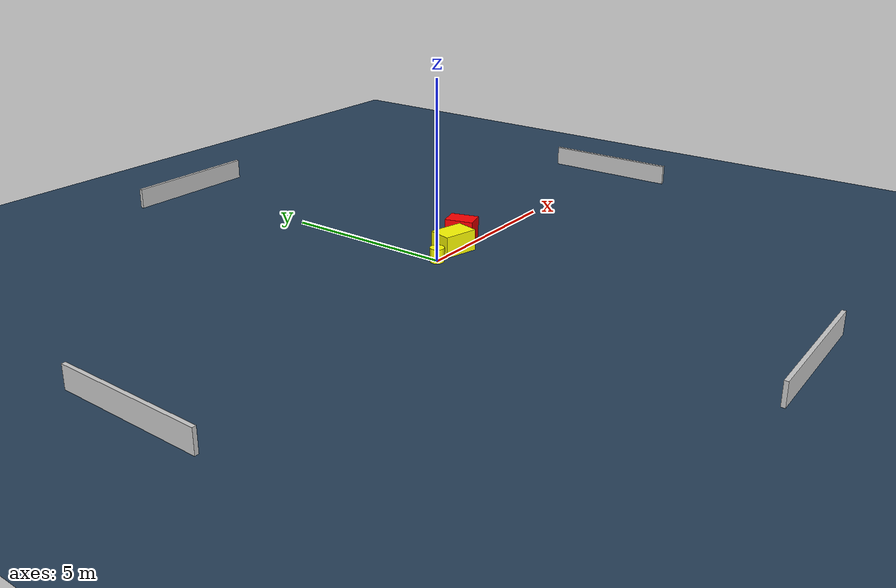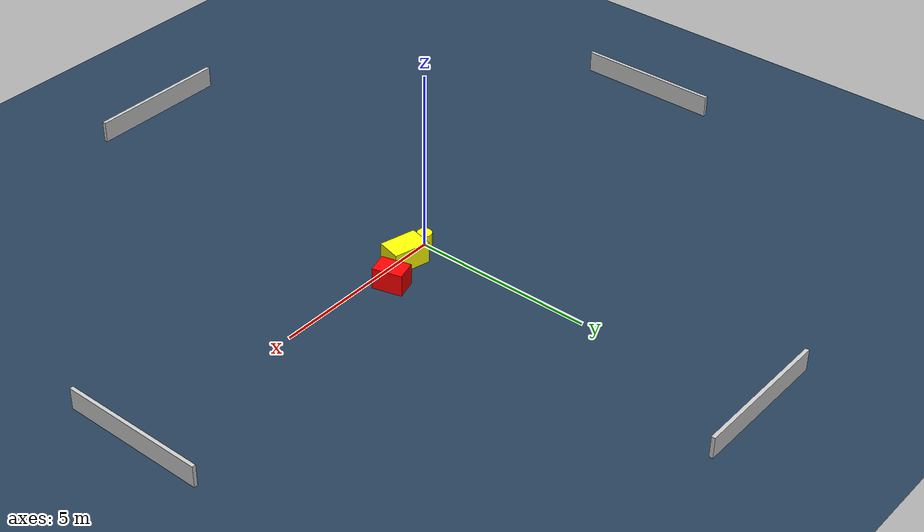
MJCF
<?xml version="1.0" ?>
<mujoco model="generated_environment">
  <option timestep="0.01" integrator="RK4" cone="elliptic"/>
  <default>
    <geom density="1"/>
  </default>
  <asset>
    <texture builtin="gradient" height="3072" name="skybox" rgb1="0.3 0.5 0.7" rgb2="0 0 0" type="skybox" width="512"/>
    <texture builtin="checker" height="300" name="groundplane" rgb1="0.2 0.3 0.4" rgb2="0.1 0.2 0.3" type="2d" width="300"/>
    <material name="groundplane" reflectance="0.2" texrepeat="5 5" texture="groundplane"/>
  </asset>
  <worldbody>
    <light dir="0 0 -1" directional="true" pos="0 0 1.5"/>
    <geom condim="3" friction="0.5 0.005 0.001" material="groundplane" name="floor" pos="0 0 0" size="0 0 0.05" type="plane"/>
    <body name="walls">
      <geom name="wall_1" condim="4" pos="-10.0 0.0 0.3" rgba="0.800000011920929 0.800000011920929 0.800000011920929 1.0" size="0.05 2.0 0.3" type="box"/>
      <geom name="wall_2" condim="4" pos="10.0 0.0 0.3" rgba="0.800000011920929 0.800000011920929 0.800000011920929 1.0" size="0.05 2.0 0.3" type="box"/>
      <geom name="wall_3" condim="4" pos="0.0 -10.0 0.3" rgba="0.800000011920929 0.800000011920929 0.800000011920929 1.0" size="2.0 0.05 0.3" type="box"/>
      <geom name="wall_4" condim="4" pos="0.0 10.0 0.3" rgba="0.800000011920929 0.800000011920929 0.800000011920929 1.0" size="2.0 0.05 0.3" type="box"/>
    </body>
    <body name="robot">
      <joint name="joint_x" type="slide" pos="0 0 0" axis="1 0 0"/>
      <joint name="joint_y" type="slide" pos="0 0 0" axis="0 1 0"/>
      <geom name="robot" type="cylinder" pos="0.0 0.0 0.2" size="0.2 0.2 0.0" mass="5.0" friction="1.0 0.005 0.0001" condim="4" rgba="1.0 1.0 0.0 1.0"/>
    </body>
    <body name="obstacle_1_movable">
      <geom name="obstacle_1_movable" condim="4" pos="0.8882544824385382 0.10133328483432705 0.3" euler="0 0 345.9620053758936" friction="0.0 0.005 0.001" rgba="1.0 1.0 0.0 1.0" size="0.5102465734049937 0.33553429101105137 0.3" type="box" mass="0.1"/>
      <joint type="free"/>
    </body>
    <body name="obstacle_2_static">
      <geom name="obstacle_2_static" condim="4" pos="1.8494941509268905 0.4973522650068314 0.3" euler="0 0 195.60151206492634" friction="0.0 0.005 0.001" rgba="1.0 0.0 0.0 1.0" size="0.28596924630864107 0.4067087961893799 0.3" type="box"/>
    </body>
  </worldbody>
  <actuator>
    <motor name="actuator_x" joint="joint_x" gear="1" ctrlrange="-1 1"/>
    <motor name="actuator_y" joint="joint_y" gear="1" ctrlrange="-1 1"/>
  </actuator>
</mujoco>
